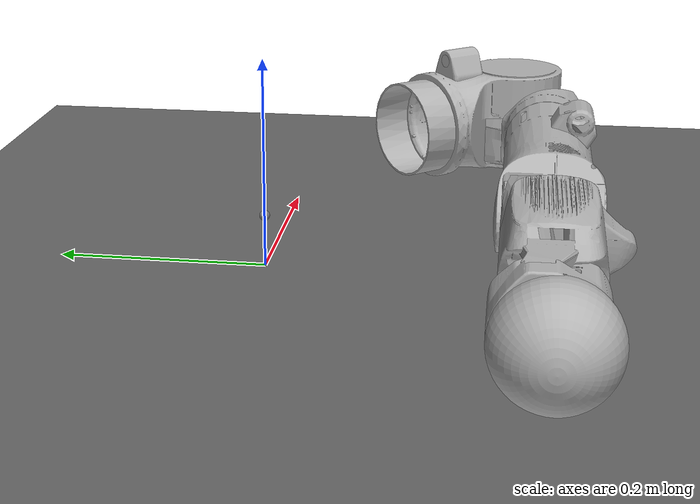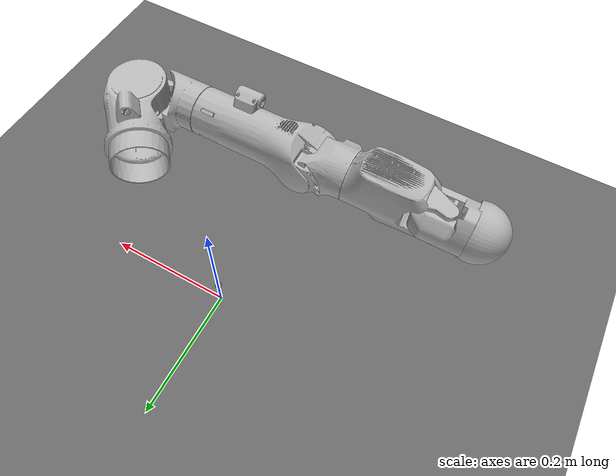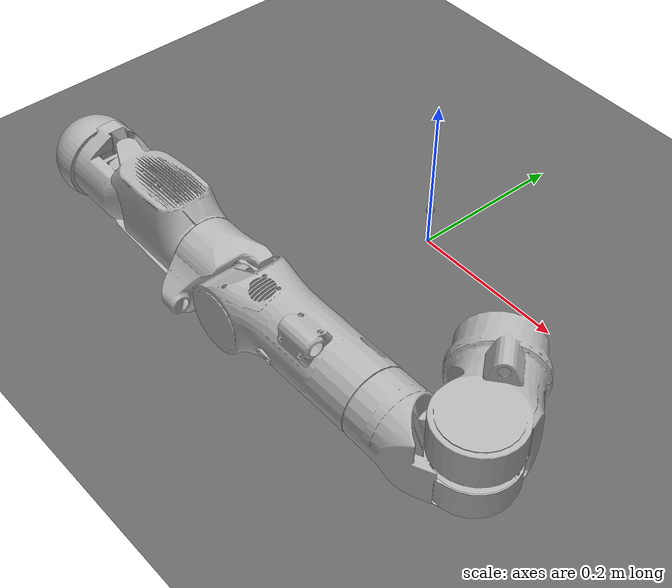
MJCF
<mujoco model="Alexander">
  <default>
    <joint limited="true" damping="0.01" armature="0.01" frictionloss="0.01" />
    <geom condim="4" contype="1" conaffinity="15" friction="0.9 0.2 0.2" solref="0.001 2" />
    <motor ctrllimited="true" />
    <equality solref="0.001 2" />
    <default class="visualgeom">
      <geom material="visualgeom" condim="1" contype="0" conaffinity="0" />
    </default>
  </default>

  <compiler angle="radian" meshdir="../meshes/" eulerseq="zyx" autolimits="true" />

  <asset>
    <texture name="texplane" type="2d" builtin="checker" rgb1=".0 .0 .0" rgb2=".8 .8 .8" width="100" height="100" />
    <material name="matplane" reflectance="0." texture="texplane" texrepeat="1 1" texuniform="true" />
    <material name="default_material" rgba="0.7 0.7 0.7 1" />
    <mesh name="RightShoulderPitchLink.obj" file="cycloidal_arm/RightShoulderPitchLink.obj" />
    <mesh name="RightShoulderRollLink_shortBicep.obj" file="cycloidal_arm/RightShoulderRollLink_shortBicep.obj" />
    <mesh name="RightShoulderYawLink.obj" file="cycloidal_arm/RightShoulderYawLink.obj" />
    <mesh name="RightElbowPitchLink.obj" file="cycloidal_arm/RightElbowPitchLink.obj" />
    <mesh name="RightWristYawLink.obj" file="cycloidal_arm/RightWristYawLink.obj" />
    <mesh name="RightWristRollLink.obj" file="cycloidal_arm/RightWristRollLink.obj" />
    <mesh name="nub.obj" file="cycloidal_arm/nub.obj" />
  </asset>

  <worldbody>
    <light directional="true" diffuse="0.4 0.4 0.4" specular="0.1 0.1 0.1" pos="0 0 5.0" dir="0 0 -1" castshadow="false" />
    <light directional="true" diffuse="0.6 0.6 0.6" specular="0.2 0.2 0.2" pos="0 0 4" dir="0 0 -1" />
    <geom name="ground" type="plane" pos="0 0 0" size="10 10 0.001" quat="1 0 0 0" material="matplane" condim="3" conaffinity="15" />
    <body name="root" pos="0 0 0.05" quat="1 0 1 0">
      <freejoint name="root" />
      <site name="root_site" pos="0 0 0" quat="1 0 0 0" />
      <body name="TORSO_LINK" pos="0 0 0" quat="1 0 0 0">
        <inertial pos="0 0 0" quat="1.0 0.0 0.0 0.0" mass="0.001" diaginertia="1e-05 1e-05 1e-05" />
        <body name="RIGHT_SHOULDER_Y_LINK" pos="-0.025 -0.1 0.214" quat="0.9396925696192966 -0.34202028390474665 0.0 0.0">
          <joint name="RIGHT_SHOULDER_Y" type="hinge" range="-3.141592 1.22173" axis="0.0 1.0 0.0" />
          <inertial pos="-0.00264 -0.12135 -0.006824" quat="1.0 0.0 0.0 0.0" mass="2.99" diaginertia="0.0110394 0.0051097 0.0116925" />
          <geom name="RIGHT_SHOULDER_Y_LINK_visual_0" pos="0.0 0.0 0.0" quat="1.0 0.0 0.0 0.0" material="default_material" type="mesh" mesh="RightShoulderPitchLink.obj" />
          <body name="RIGHT_SHOULDER_X_LINK" pos="0.0 -0.15676000 -0.01300000" quat="0.9396925696192966 0.34202028390474665 0.0 0.0">
            <joint name="RIGHT_SHOULDER_X" type="hinge" range="-2.79253 0.349066" axis="1 0 0" />
            <inertial pos="0.012489 -0.01882 -0.0385" quat="1.0 0.0 0.0 0.0" mass="0.972" diaginertia="0.002949 0.0023603 0.0014377" />
            <geom name="RIGHT_SHOULDER_X_LINK_visual_0" pos="0.0 0.0 0.0" quat="1.0 0.0 0.0 0.0" material="default_material" type="mesh" mesh="RightShoulderRollLink_shortBicep.obj" />
            <body name="RIGHT_SHOULDER_Z_LINK" pos="0.0 -0.035 0.0" quat="1.0 0.0 0.0 0.0">
              <joint name="RIGHT_SHOULDER_Z" type="hinge" range="-1.22173 1.91986" axis="0.0 0.0 1.0" />
              <inertial pos="0.00524 -0.00274 -0.21745" quat="1.0 0.0 0.0 0.0" mass="2.91" diaginertia="0.0248699 0.0245973 0.0029883" />
              <geom name="RIGHT_SHOULDER_Z_LINK_visual_0" pos="0.0 0.0 0.0867" quat="1.0 0.0 0.0 0.0" material="default_material" type="mesh" mesh="RightShoulderYawLink.obj" />
              <body name="RIGHT_ELBOW_Y_LINK" pos="0.015 0.0 -0.3127" quat="1.0 0.0 0.0 0.0">
                <joint name="RIGHT_ELBOW_Y" type="hinge" range="-2.35619 0.174532925" axis="0.0 1.0 0.0" />
                <inertial pos="-0.0127 0.006913 -0.048421" quat="1.0 0.0 0.0 0.0" mass="0.45" diaginertia="0.0006446 0.000625 0.0003922" />
                <geom name="RIGHT_ELBOW_Y_LINK_visual_0" pos="0.0 0.0 0.0" quat="1.0 0.0 0.0 0.0" material="default_material" type="mesh" mesh="RightElbowPitchLink.obj" />
                <body name="RIGHT_WRIST_Z_LINK" pos="-0.015 0.0 0.0" quat="1.0 0.0 0.0 0.0">
                  <joint name="RIGHT_WRIST_Z" type="hinge" range="-2.61799 2.61799" axis="0.0 0.0 1.0" />
                  <inertial pos="-0.002616 0.000462 -0.13019" quat="1.0 0.0 0.0 0.0" mass="1.547" diaginertia="0.0037805 0.0040639 0.0015151" />
                  <geom name="RIGHT_WRIST_Z_LINK_visual_0" pos="0.0 0.0 0.0" quat="1.0 0.0 0.0 0.0" material="default_material" type="mesh" mesh="RightWristYawLink.obj" />
                  <body name="RIGHT_WRIST_X_LINK" pos="0.0 0.013 -0.25" quat="1.0 0.0 0.0 0.0">
                    <joint name="RIGHT_WRIST_X" type="hinge" range="-0.610865 1.8326" axis="1 0 0" />
                    <inertial pos="-0.0000481 -0.012143 0.000196" quat="1.0 0.0 0.0 0.0" mass="0.909" diaginertia="0.0005535 0.0005559 0.0005893" />
                    <geom name="RIGHT_WRIST_X_LINK_visual_0" pos="0.0 0.0 0.0" quat="1.0 0.0 0.0 0.0" material="default_material" type="mesh" mesh="RightWristRollLink.obj" />
                    <body name="RIGHT_GRIPPER_Z_LINK" pos="0.0 -0.013 -0.031" quat="1.0 0.0 0.0 0.0">
                      <joint name="RIGHT_GRIPPER_Z" type="hinge" range="-2.61799 2.61799" axis="0.0 0.0 1.0" />
                      <inertial pos="-0.000217 -0.000349 0.009761" quat="1.0 0.0 0.0 0.0" mass="0.251" diaginertia="7.22e-05 7.47e-05 3.24e-05" />
                      <geom name="RIGHT_GRIPPER_Z_LINK_visual_0" pos="0.0 0.0 0.0" quat="0.7073882691671998 0.0 0.706825181105366 0.0" material="default_material" type="mesh" mesh="nub.obj" />
                    </body>
                  </body>
                </body>
              </body>
            </body>
          </body>
        </body>
      </body>
    </body>
  </worldbody>

  <actuator>
    <position name="RIGHT_SHOULDER_Y_ctrl" joint="RIGHT_SHOULDER_Y" kp="40.00000000" kv="2.00000000" forcerange="-1000.00000000 1000.00000000" forcelimited="true" ctrlrange="-3.141592 1.22173" ctrllimited="true" />
    <position name="RIGHT_SHOULDER_X_ctrl" joint="RIGHT_SHOULDER_X" kp="40.00000000" kv="2.00000000" forcerange="-1000.00000000 1000.00000000" forcelimited="true" ctrlrange="-2.79253 0.349066" ctrllimited="true" />
    <position name="RIGHT_SHOULDER_Z_ctrl" joint="RIGHT_SHOULDER_Z" kp="40.00000000" kv="2.00000000" forcerange="-1000.00000000 1000.00000000" forcelimited="true" ctrlrange="-1.22173 1.91986" ctrllimited="true" />
    <position name="RIGHT_ELBOW_Y_ctrl" joint="RIGHT_ELBOW_Y" kp="40.00000000" kv="2.00000000" forcerange="-1000.00000000 1000.00000000" forcelimited="true" ctrlrange="-2.35619 0.174532925" ctrllimited="true" />
    <position name="RIGHT_WRIST_Z_ctrl" joint="RIGHT_WRIST_Z" kp="40.00000000" kv="2.00000000" forcerange="-20.00000000 20.00000000" forcelimited="true" ctrlrange="-2.61799 2.61799" ctrllimited="true" />
    <position name="RIGHT_WRIST_X_ctrl" joint="RIGHT_WRIST_X" kp="40.00000000" kv="2.00000000" forcerange="-20.00000000 20.00000000" forcelimited="true" ctrlrange="-0.610865 1.8326" ctrllimited="true" />
    <position name="RIGHT_GRIPPER_Z_ctrl" joint="RIGHT_GRIPPER_Z" kp="40.00000000" kv="2.00000000" forcerange="-20.00000000 20.00000000" forcelimited="true" ctrlrange="-2.61799 2.61799" ctrllimited="true" />
  </actuator>

  <sensor>
    <framepos name="base_link_pos" objtype="site" objname="root_site" />
    <framequat name="base_link_quat" objtype="site" objname="root_site" />
    <framelinvel name="base_link_vel" objtype="site" objname="root_site" />
    <frameangvel name="base_link_ang_vel" objtype="site" objname="root_site" />
  </sensor>
</mujoco>
